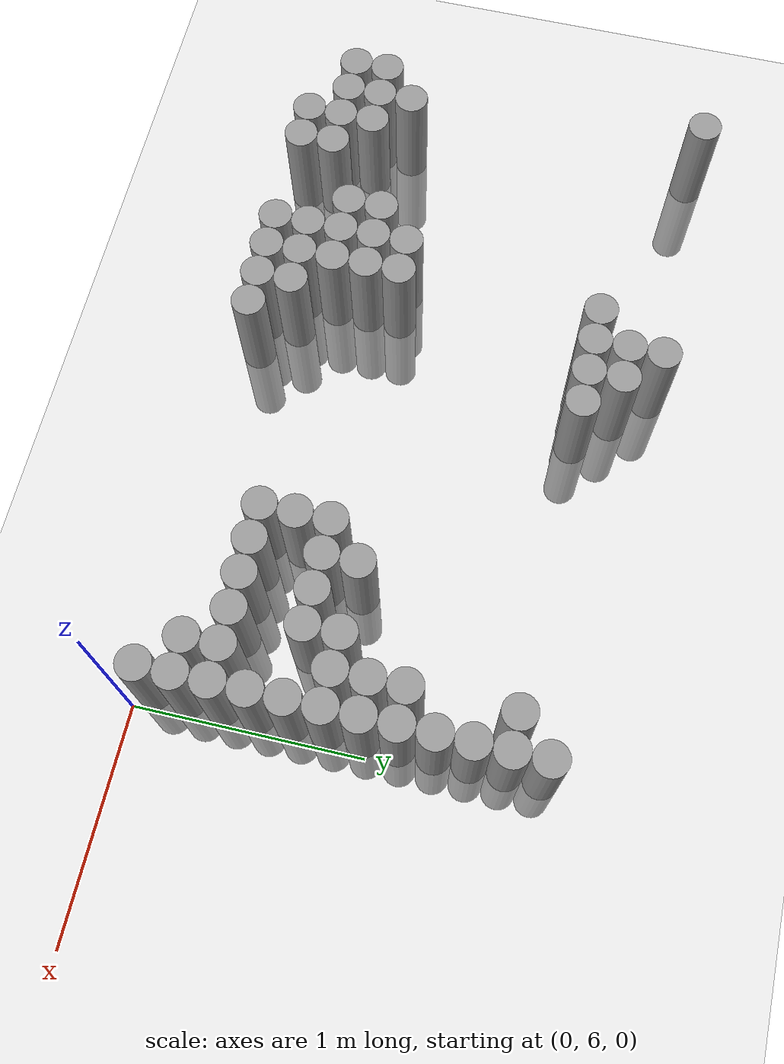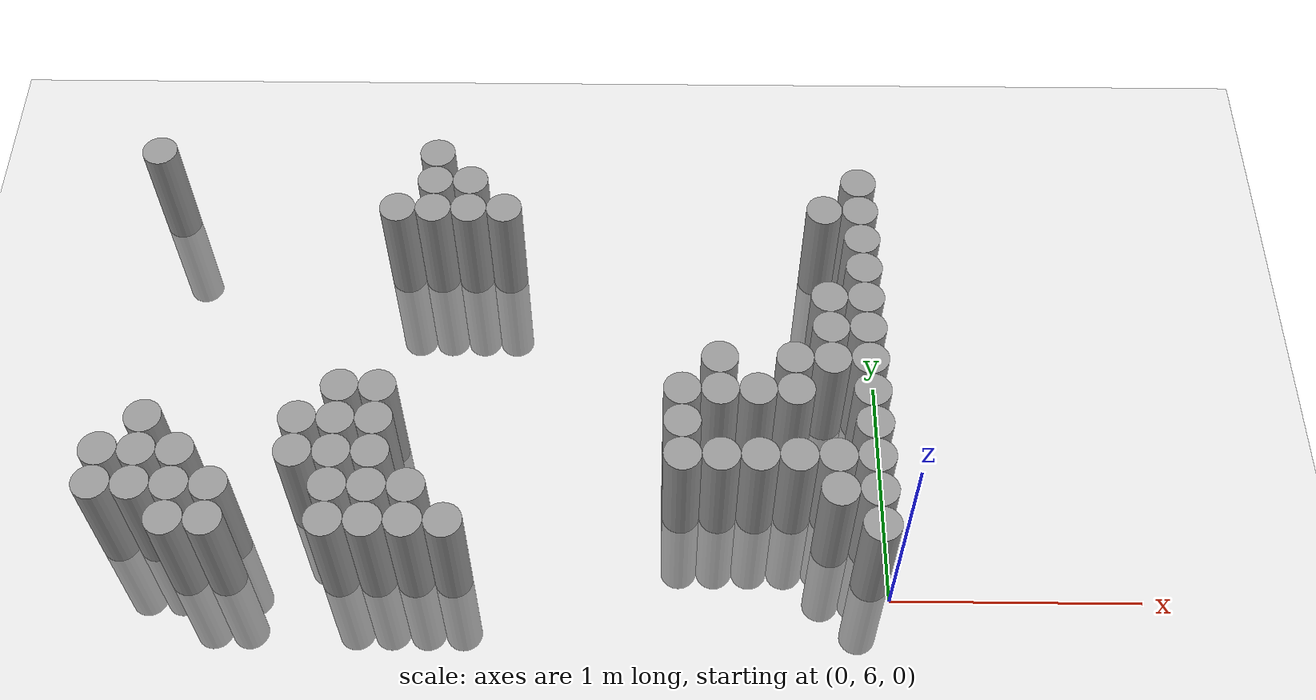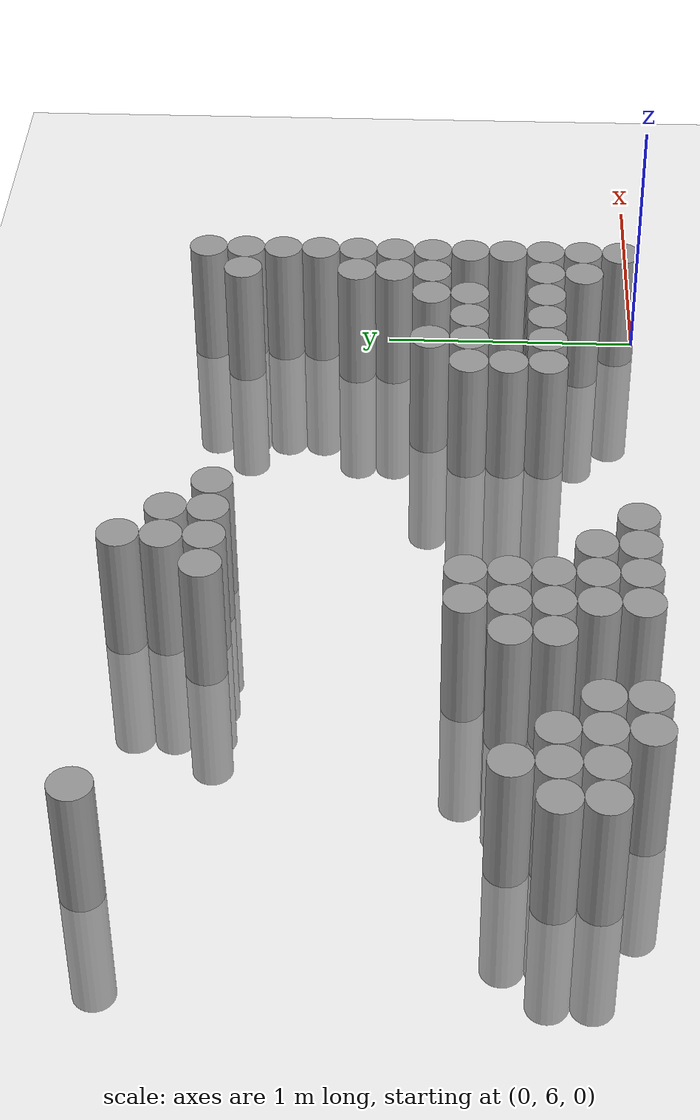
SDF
<sdf version="1.6">
 <world name="default">
  <model name="ground_plane">
   <static>1</static>
   <static>1</static>
   <link name="link">
    <collision name="collision">
     <geometry><plane><normal>0 0 1</normal><size>100 100</size></plane></geometry>
     <surface><friction><ode><mu>100</mu><mu2>50</mu2></ode></friction></surface>
    </collision>
    <visual name="visual">
     <cast_shadows>0</cast_shadows>
     <geometry><plane><normal>0 0 1</normal><size>100 100</size></plane></geometry>
     <material>
      <script><uri>file://media/materials/scripts/gazebo.material</uri><name>Gazebo/Grey</name></script>
     </material>
    </visual>
   </link>
  </model>
  <model name="unit_cylinder_171">
   <static>1</static>
   <pose>-3.075000 6.225000 0.000000 0.000000 0.000000 0.000000</pose>
   <link name="link">
    <inertial>
     <mass>1</mass>
     <inertia><ixx>0.145833</ixx><ixy>0</ixy><ixz>0</ixz><iyy>0.145833</iyy><iyz>0</iyz><izz>0.125</izz></inertia>
    </inertial>
    <collision name="collision">
     <geometry><cylinder><radius>0.075000</radius><length>1</length></cylinder></geometry>
    </collision>
    <visual name="visual">
     <geometry><cylinder><radius>0.075000</radius><length>1</length></cylinder></geometry>
     <material>
      <script><name>Gazebo/Grey</name><uri>file://media/materials/scripts/gazebo.material</uri></script>
     </material>
    </visual>
   </link>
  </model>
  <model name="unit_cylinder_172">
   <static>1</static>
   <pose>-3.075000 6.375000 0.000000 0.000000 0.000000 0.000000</pose>
   <link name="link">
    <inertial>
     <mass>1</mass>
     <inertia><ixx>0.145833</ixx><ixy>0</ixy><ixz>0</ixz><iyy>0.145833</iyy><iyz>0</iyz><izz>0.125</izz></inertia>
    </inertial>
    <collision name="collision">
     <geometry><cylinder><radius>0.075000</radius><length>1</length></cylinder></geometry>
    </collision>
    <visual name="visual">
     <geometry><cylinder><radius>0.075000</radius><length>1</length></cylinder></geometry>
     <material>
      <script><name>Gazebo/Grey</name><uri>file://media/materials/scripts/gazebo.material</uri></script>
     </material>
    </visual>
   </link>
  </model>
  <model name="unit_cylinder_173">
   <static>1</static>
   <pose>-3.075000 7.875000 0.000000 0.000000 0.000000 0.000000</pose>
   <link name="link">
    <inertial>
     <mass>1</mass>
     <inertia><ixx>0.145833</ixx><ixy>0</ixy><ixz>0</ixz><iyy>0.145833</iyy><iyz>0</iyz><izz>0.125</izz></inertia>
    </inertial>
    <collision name="collision">
     <geometry><cylinder><radius>0.075000</radius><length>1</length></cylinder></geometry>
    </collision>
    <visual name="visual">
     <geometry><cylinder><radius>0.075000</radius><length>1</length></cylinder></geometry>
     <material>
      <script><name>Gazebo/Grey</name><uri>file://media/materials/scripts/gazebo.material</uri></script>
     </material>
    </visual>
   </link>
  </model>
  <model name="unit_cylinder_174">
   <static>1</static>
   <pose>-2.925000 6.225000 0.000000 0.000000 0.000000 0.000000</pose>
   <link name="link">
    <inertial>
     <mass>1</mass>
     <inertia><ixx>0.145833</ixx><ixy>0</ixy><ixz>0</ixz><iyy>0.145833</iyy><iyz>0</iyz><izz>0.125</izz></inertia>
    </inertial>
    <collision name="collision">
     <geometry><cylinder><radius>0.075000</radius><length>1</length></cylinder></geometry>
    </collision>
    <visual name="visual">
     <geometry><cylinder><radius>0.075000</radius><length>1</length></cylinder></geometry>
     <material>
      <script><name>Gazebo/Grey</name><uri>file://media/materials/scripts/gazebo.material</uri></script>
     </material>
    </visual>
   </link>
  </model>
  <model name="unit_cylinder_175">
   <static>1</static>
   <pose>-2.925000 6.375000 0.000000 0.000000 0.000000 0.000000</pose>
   <link name="link">
    <inertial>
     <mass>1</mass>
     <inertia><ixx>0.145833</ixx><ixy>0</ixy><ixz>0</ixz><iyy>0.145833</iyy><iyz>0</iyz><izz>0.125</izz></inertia>
    </inertial>
    <collision name="collision">
     <geometry><cylinder><radius>0.075000</radius><length>1</length></cylinder></geometry>
    </collision>
    <visual name="visual">
     <geometry><cylinder><radius>0.075000</radius><length>1</length></cylinder></geometry>
     <material>
      <script><name>Gazebo/Grey</name><uri>file://media/materials/scripts/gazebo.material</uri></script>
     </material>
    </visual>
   </link>
  </model>
  <model name="unit_cylinder_176">
   <static>1</static>
   <pose>-2.925000 6.525000 0.000000 0.000000 0.000000 0.000000</pose>
   <link name="link">
    <inertial>
     <mass>1</mass>
     <inertia><ixx>0.145833</ixx><ixy>0</ixy><ixz>0</ixz><iyy>0.145833</iyy><iyz>0</iyz><izz>0.125</izz></inertia>
    </inertial>
    <collision name="collision">
     <geometry><cylinder><radius>0.075000</radius><length>1</length></cylinder></geometry>
    </collision>
    <visual name="visual">
     <geometry><cylinder><radius>0.075000</radius><length>1</length></cylinder></geometry>
     <material>
      <script><name>Gazebo/Grey</name><uri>file://media/materials/scripts/gazebo.material</uri></script>
     </material>
    </visual>
   </link>
  </model>
  <model name="unit_cylinder_177">
   <static>1</static>
   <pose>-2.775000 6.075000 0.000000 0.000000 0.000000 0.000000</pose>
   <link name="link">
    <inertial>
     <mass>1</mass>
     <inertia><ixx>0.145833</ixx><ixy>0</ixy><ixz>0</ixz><iyy>0.145833</iyy><iyz>0</iyz><izz>0.125</izz></inertia>
    </inertial>
    <collision name="collision">
     <geometry><cylinder><radius>0.075000</radius><length>1</length></cylinder></geometry>
    </collision>
    <visual name="visual">
     <geometry><cylinder><radius>0.075000</radius><length>1</length></cylinder></geometry>
     <material>
      <script><name>Gazebo/Grey</name><uri>file://media/materials/scripts/gazebo.material</uri></script>
     </material>
    </visual>
   </link>
  </model>
  <model name="unit_cylinder_178">
   <static>1</static>
   <pose>-2.775000 6.225000 0.000000 0.000000 0.000000 0.000000</pose>
   <link name="link">
    <inertial>
     <mass>1</mass>
     <inertia><ixx>0.145833</ixx><ixy>0</ixy><ixz>0</ixz><iyy>0.145833</iyy><iyz>0</iyz><izz>0.125</izz></inertia>
    </inertial>
    <collision name="collision">
     <geometry><cylinder><radius>0.075000</radius><length>1</length></cylinder></geometry>
    </collision>
    <visual name="visual">
     <geometry><cylinder><radius>0.075000</radius><length>1</length></cylinder></geometry>
     <material>
      <script><name>Gazebo/Grey</name><uri>file://media/materials/scripts/gazebo.material</uri></script>
     </material>
    </visual>
   </link>
  </model>
  <model name="unit_cylinder_179">
   <static>1</static>
   <pose>-2.775000 6.375000 0.000000 0.000000 0.000000 0.000000</pose>
   <link name="link">
    <inertial>
     <mass>1</mass>
     <inertia><ixx>0.145833</ixx><ixy>0</ixy><ixz>0</ixz><iyy>0.145833</iyy><iyz>0</iyz><izz>0.125</izz></inertia>
    </inertial>
    <collision name="collision">
     <geometry><cylinder><radius>0.075000</radius><length>1</length></cylinder></geometry>
    </collision>
    <visual name="visual">
     <geometry><cylinder><radius>0.075000</radius><length>1</length></cylinder></geometry>
     <material>
      <script><name>Gazebo/Grey</name><uri>file://media/materials/scripts/gazebo.material</uri></script>
     </material>
    </visual>
   </link>
  </model>
  <model name="unit_cylinder_181">
   <static>1</static>
   <pose>-2.625000 6.075000 0.000000 0.000000 0.000000 0.000000</pose>
   <link name="link">
    <inertial>
     <mass>1</mass>
     <inertia><ixx>0.145833</ixx><ixy>0</ixy><ixz>0</ixz><iyy>0.145833</iyy><iyz>0</iyz><izz>0.125</izz></inertia>
    </inertial>
    <collision name="collision">
     <geometry><cylinder><radius>0.075000</radius><length>1</length></cylinder></geometry>
    </collision>
    <visual name="visual">
     <geometry><cylinder><radius>0.075000</radius><length>1</length></cylinder></geometry>
     <material>
      <script><name>Gazebo/Grey</name><uri>file://media/materials/scripts/gazebo.material</uri></script>
     </material>
    </visual>
   </link>
  </model>
  <model name="unit_cylinder_182">
   <static>1</static>
   <pose>-2.625000 6.225000 0.000000 0.000000 0.000000 0.000000</pose>
   <link name="link">
    <inertial>
     <mass>1</mass>
     <inertia><ixx>0.145833</ixx><ixy>0</ixy><ixz>0</ixz><iyy>0.145833</iyy><iyz>0</iyz><izz>0.125</izz></inertia>
    </inertial>
    <collision name="collision">
     <geometry><cylinder><radius>0.075000</radius><length>1</length></cylinder></geometry>
    </collision>
    <visual name="visual">
     <geometry><cylinder><radius>0.075000</radius><length>1</length></cylinder></geometry>
     <material>
      <script><name>Gazebo/Grey</name><uri>file://media/materials/scripts/gazebo.material</uri></script>
     </material>
    </visual>
   </link>
  </model>
  <model name="unit_cylinder_190">
   <static>1</static>
   <pose>-2.325000 6.375000 0.000000 0.000000 0.000000 0.000000</pose>
   <link name="link">
    <inertial>
     <mass>1</mass>
     <inertia><ixx>0.145833</ixx><ixy>0</ixy><ixz>0</ixz><iyy>0.145833</iyy><iyz>0</iyz><izz>0.125</izz></inertia>
    </inertial>
    <collision name="collision">
     <geometry><cylinder><radius>0.075000</radius><length>1</length></cylinder></geometry>
    </collision>
    <visual name="visual">
     <geometry><cylinder><radius>0.075000</radius><length>1</length></cylinder></geometry>
     <material>
      <script><name>Gazebo/Grey</name><uri>file://media/materials/scripts/gazebo.material</uri></script>
     </material>
    </visual>
   </link>
  </model>
  <model name="unit_cylinder_191">
   <static>1</static>
   <pose>-2.325000 6.525000 0.000000 0.000000 0.000000 0.000000</pose>
   <link name="link">
    <inertial>
     <mass>1</mass>
     <inertia><ixx>0.145833</ixx><ixy>0</ixy><ixz>0</ixz><iyy>0.145833</iyy><iyz>0</iyz><izz>0.125</izz></inertia>
    </inertial>
    <collision name="collision">
     <geometry><cylinder><radius>0.075000</radius><length>1</length></cylinder></geometry>
    </collision>
    <visual name="visual">
     <geometry><cylinder><radius>0.075000</radius><length>1</length></cylinder></geometry>
     <material>
      <script><name>Gazebo/Grey</name><uri>file://media/materials/scripts/gazebo.material</uri></script>
     </material>
    </visual>
   </link>
  </model>
  <model name="unit_cylinder_196">
   <static>1</static>
   <pose>-2.175000 6.075000 0.000000 0.000000 0.000000 0.000000</pose>
   <link name="link">
    <inertial>
     <mass>1</mass>
     <inertia><ixx>0.145833</ixx><ixy>0</ixy><ixz>0</ixz><iyy>0.145833</iyy><iyz>0</iyz><izz>0.125</izz></inertia>
    </inertial>
    <collision name="collision">
     <geometry><cylinder><radius>0.075000</radius><length>1</length></cylinder></geometry>
    </collision>
    <visual name="visual">
     <geometry><cylinder><radius>0.075000</radius><length>1</length></cylinder></geometry>
     <material>
      <script><name>Gazebo/Grey</name><uri>file://media/materials/scripts/gazebo.material</uri></script>
     </material>
    </visual>
   </link>
  </model>
  <model name="unit_cylinder_197">
   <static>1</static>
   <pose>-2.175000 6.225000 0.000000 0.000000 0.000000 0.000000</pose>
   <link name="link">
    <inertial>
     <mass>1</mass>
     <inertia><ixx>0.145833</ixx><ixy>0</ixy><ixz>0</ixz><iyy>0.145833</iyy><iyz>0</iyz><izz>0.125</izz></inertia>
    </inertial>
    <collision name="collision">
     <geometry><cylinder><radius>0.075000</radius><length>1</length></cylinder></geometry>
    </collision>
    <visual name="visual">
     <geometry><cylinder><radius>0.075000</radius><length>1</length></cylinder></geometry>
     <material>
      <script><name>Gazebo/Grey</name><uri>file://media/materials/scripts/gazebo.material</uri></script>
     </material>
    </visual>
   </link>
  </model>
  <model name="unit_cylinder_198">
   <static>1</static>
   <pose>-2.175000 6.375000 0.000000 0.000000 0.000000 0.000000</pose>
   <link name="link">
    <inertial>
     <mass>1</mass>
     <inertia><ixx>0.145833</ixx><ixy>0</ixy><ixz>0</ixz><iyy>0.145833</iyy><iyz>0</iyz><izz>0.125</izz></inertia>
    </inertial>
    <collision name="collision">
     <geometry><cylinder><radius>0.075000</radius><length>1</length></cylinder></geometry>
    </collision>
    <visual name="visual">
     <geometry><cylinder><radius>0.075000</radius><length>1</length></cylinder></geometry>
     <material>
      <script><name>Gazebo/Grey</name><uri>file://media/materials/scripts/gazebo.material</uri></script>
     </material>
    </visual>
   </link>
  </model>
  <model name="unit_cylinder_199">
   <static>1</static>
   <pose>-2.175000 6.525000 0.000000 0.000000 0.000000 0.000000</pose>
   <link name="link">
    <inertial>
     <mass>1</mass>
     <inertia><ixx>0.145833</ixx><ixy>0</ixy><ixz>0</ixz><iyy>0.145833</iyy><iyz>0</iyz><izz>0.125</izz></inertia>
    </inertial>
    <collision name="collision">
     <geometry><cylinder><radius>0.075000</radius><length>1</length></cylinder></geometry>
    </collision>
    <visual name="visual">
     <geometry><cylinder><radius>0.075000</radius><length>1</length></cylinder></geometry>
     <material>
      <script><name>Gazebo/Grey</name><uri>file://media/materials/scripts/gazebo.material</uri></script>
     </material>
    </visual>
   </link>
  </model>
  <model name="unit_cylinder_200">
   <static>1</static>
   <pose>-2.175000 6.675000 0.000000 0.000000 0.000000 0.000000</pose>
   <link name="link">
    <inertial>
     <mass>1</mass>
     <inertia><ixx>0.145833</ixx><ixy>0</ixy><ixz>0</ixz><iyy>0.145833</iyy><iyz>0</iyz><izz>0.125</izz></inertia>
    </inertial>
    <collision name="collision">
     <geometry><cylinder><radius>0.075000</radius><length>1</length></cylinder></geometry>
    </collision>
    <visual name="visual">
     <geometry><cylinder><radius>0.075000</radius><length>1</length></cylinder></geometry>
     <material>
      <script><name>Gazebo/Grey</name><uri>file://media/materials/scripts/gazebo.material</uri></script>
     </material>
    </visual>
   </link>
  </model>
  <model name="unit_cylinder_204">
   <static>1</static>
   <pose>-2.025000 6.075000 0.000000 0.000000 0.000000 0.000000</pose>
   <link name="link">
    <inertial>
     <mass>1</mass>
     <inertia><ixx>0.145833</ixx><ixy>0</ixy><ixz>0</ixz><iyy>0.145833</iyy><iyz>0</iyz><izz>0.125</izz></inertia>
    </inertial>
    <collision name="collision">
     <geometry><cylinder><radius>0.075000</radius><length>1</length></cylinder></geometry>
    </collision>
    <visual name="visual">
     <geometry><cylinder><radius>0.075000</radius><length>1</length></cylinder></geometry>
     <material>
      <script><name>Gazebo/Grey</name><uri>file://media/materials/scripts/gazebo.material</uri></script>
     </material>
    </visual>
   </link>
  </model>
  <model name="unit_cylinder_205">
   <static>1</static>
   <pose>-2.025000 6.225000 0.000000 0.000000 0.000000 0.000000</pose>
   <link name="link">
    <inertial>
     <mass>1</mass>
     <inertia><ixx>0.145833</ixx><ixy>0</ixy><ixz>0</ixz><iyy>0.145833</iyy><iyz>0</iyz><izz>0.125</izz></inertia>
    </inertial>
    <collision name="collision">
     <geometry><cylinder><radius>0.075000</radius><length>1</length></cylinder></geometry>
    </collision>
    <visual name="visual">
     <geometry><cylinder><radius>0.075000</radius><length>1</length></cylinder></geometry>
     <material>
      <script><name>Gazebo/Grey</name><uri>file://media/materials/scripts/gazebo.material</uri></script>
     </material>
    </visual>
   </link>
  </model>
  <model name="unit_cylinder_206">
   <static>1</static>
   <pose>-2.025000 6.375000 0.000000 0.000000 0.000000 0.000000</pose>
   <link name="link">
    <inertial>
     <mass>1</mass>
     <inertia><ixx>0.145833</ixx><ixy>0</ixy><ixz>0</ixz><iyy>0.145833</iyy><iyz>0</iyz><izz>0.125</izz></inertia>
    </inertial>
    <collision name="collision">
     <geometry><cylinder><radius>0.075000</radius><length>1</length></cylinder></geometry>
    </collision>
    <visual name="visual">
     <geometry><cylinder><radius>0.075000</radius><length>1</length></cylinder></geometry>
     <material>
      <script><name>Gazebo/Grey</name><uri>file://media/materials/scripts/gazebo.material</uri></script>
     </material>
    </visual>
   </link>
  </model>
  <model name="unit_cylinder_207">
   <static>1</static>
   <pose>-2.025000 6.525000 0.000000 0.000000 0.000000 0.000000</pose>
   <link name="link">
    <inertial>
     <mass>1</mass>
     <inertia><ixx>0.145833</ixx><ixy>0</ixy><ixz>0</ixz><iyy>0.145833</iyy><iyz>0</iyz><izz>0.125</izz></inertia>
    </inertial>
    <collision name="collision">
     <geometry><cylinder><radius>0.075000</radius><length>1</length></cylinder></geometry>
    </collision>
    <visual name="visual">
     <geometry><cylinder><radius>0.075000</radius><length>1</length></cylinder></geometry>
     <material>
      <script><name>Gazebo/Grey</name><uri>file://media/materials/scripts/gazebo.material</uri></script>
     </material>
    </visual>
   </link>
  </model>
  <model name="unit_cylinder_208">
   <static>1</static>
   <pose>-2.025000 6.675000 0.000000 0.000000 0.000000 0.000000</pose>
   <link name="link">
    <inertial>
     <mass>1</mass>
     <inertia><ixx>0.145833</ixx><ixy>0</ixy><ixz>0</ixz><iyy>0.145833</iyy><iyz>0</iyz><izz>0.125</izz></inertia>
    </inertial>
    <collision name="collision">
     <geometry><cylinder><radius>0.075000</radius><length>1</length></cylinder></geometry>
    </collision>
    <visual name="visual">
     <geometry><cylinder><radius>0.075000</radius><length>1</length></cylinder></geometry>
     <material>
      <script><name>Gazebo/Grey</name><uri>file://media/materials/scripts/gazebo.material</uri></script>
     </material>
    </visual>
   </link>
  </model>
  <model name="unit_cylinder_209">
   <static>1</static>
   <pose>-2.025000 7.575000 0.000000 0.000000 0.000000 0.000000</pose>
   <link name="link">
    <inertial>
     <mass>1</mass>
     <inertia><ixx>0.145833</ixx><ixy>0</ixy><ixz>0</ixz><iyy>0.145833</iyy><iyz>0</iyz><izz>0.125</izz></inertia>
    </inertial>
    <collision name="collision">
     <geometry><cylinder><radius>0.075000</radius><length>1</length></cylinder></geometry>
    </collision>
    <visual name="visual">
     <geometry><cylinder><radius>0.075000</radius><length>1</length></cylinder></geometry>
     <material>
      <script><name>Gazebo/Grey</name><uri>file://media/materials/scripts/gazebo.material</uri></script>
     </material>
    </visual>
   </link>
  </model>
  <model name="unit_cylinder_217">
   <static>1</static>
   <pose>-1.875000 6.075000 0.000000 0.000000 0.000000 0.000000</pose>
   <link name="link">
    <inertial>
     <mass>1</mass>
     <inertia><ixx>0.145833</ixx><ixy>0</ixy><ixz>0</ixz><iyy>0.145833</iyy><iyz>0</iyz><izz>0.125</izz></inertia>
    </inertial>
    <collision name="collision">
     <geometry><cylinder><radius>0.075000</radius><length>1</length></cylinder></geometry>
    </collision>
    <visual name="visual">
     <geometry><cylinder><radius>0.075000</radius><length>1</length></cylinder></geometry>
     <material>
      <script><name>Gazebo/Grey</name><uri>file://media/materials/scripts/gazebo.material</uri></script>
     </material>
    </visual>
   </link>
  </model>
  <model name="unit_cylinder_218">
   <static>1</static>
   <pose>-1.875000 6.225000 0.000000 0.000000 0.000000 0.000000</pose>
   <link name="link">
    <inertial>
     <mass>1</mass>
     <inertia><ixx>0.145833</ixx><ixy>0</ixy><ixz>0</ixz><iyy>0.145833</iyy><iyz>0</iyz><izz>0.125</izz></inertia>
    </inertial>
    <collision name="collision">
     <geometry><cylinder><radius>0.075000</radius><length>1</length></cylinder></geometry>
    </collision>
    <visual name="visual">
     <geometry><cylinder><radius>0.075000</radius><length>1</length></cylinder></geometry>
     <material>
      <script><name>Gazebo/Grey</name><uri>file://media/materials/scripts/gazebo.material</uri></script>
     </material>
    </visual>
   </link>
  </model>
  <model name="unit_cylinder_219">
   <static>1</static>
   <pose>-1.875000 7.575000 0.000000 0.000000 0.000000 0.000000</pose>
   <link name="link">
    <inertial>
     <mass>1</mass>
     <inertia><ixx>0.145833</ixx><ixy>0</ixy><ixz>0</ixz><iyy>0.145833</iyy><iyz>0</iyz><izz>0.125</izz></inertia>
    </inertial>
    <collision name="collision">
     <geometry><cylinder><radius>0.075000</radius><length>1</length></cylinder></geometry>
    </collision>
    <visual name="visual">
     <geometry><cylinder><radius>0.075000</radius><length>1</length></cylinder></geometry>
     <material>
      <script><name>Gazebo/Grey</name><uri>file://media/materials/scripts/gazebo.material</uri></script>
     </material>
    </visual>
   </link>
  </model>
  <model name="unit_cylinder_220">
   <static>1</static>
   <pose>-1.875000 7.725000 0.000000 0.000000 0.000000 0.000000</pose>
   <link name="link">
    <inertial>
     <mass>1</mass>
     <inertia><ixx>0.145833</ixx><ixy>0</ixy><ixz>0</ixz><iyy>0.145833</iyy><iyz>0</iyz><izz>0.125</izz></inertia>
    </inertial>
    <collision name="collision">
     <geometry><cylinder><radius>0.075000</radius><length>1</length></cylinder></geometry>
    </collision>
    <visual name="visual">
     <geometry><cylinder><radius>0.075000</radius><length>1</length></cylinder></geometry>
     <material>
      <script><name>Gazebo/Grey</name><uri>file://media/materials/scripts/gazebo.material</uri></script>
     </material>
    </visual>
   </link>
  </model>
  <model name="unit_cylinder_221">
   <static>1</static>
   <pose>-1.875000 7.875000 0.000000 0.000000 0.000000 0.000000</pose>
   <link name="link">
    <inertial>
     <mass>1</mass>
     <inertia><ixx>0.145833</ixx><ixy>0</ixy><ixz>0</ixz><iyy>0.145833</iyy><iyz>0</iyz><izz>0.125</izz></inertia>
    </inertial>
    <collision name="collision">
     <geometry><cylinder><radius>0.075000</radius><length>1</length></cylinder></geometry>
    </collision>
    <visual name="visual">
     <geometry><cylinder><radius>0.075000</radius><length>1</length></cylinder></geometry>
     <material>
      <script><name>Gazebo/Grey</name><uri>file://media/materials/scripts/gazebo.material</uri></script>
     </material>
    </visual>
   </link>
  </model>
  <model name="unit_cylinder_229">
   <static>1</static>
   <pose>-1.725000 6.075000 0.000000 0.000000 0.000000 0.000000</pose>
   <link name="link">
    <inertial>
     <mass>1</mass>
     <inertia><ixx>0.145833</ixx><ixy>0</ixy><ixz>0</ixz><iyy>0.145833</iyy><iyz>0</iyz><izz>0.125</izz></inertia>
    </inertial>
    <collision name="collision">
     <geometry><cylinder><radius>0.075000</radius><length>1</length></cylinder></geometry>
    </collision>
    <visual name="visual">
     <geometry><cylinder><radius>0.075000</radius><length>1</length></cylinder></geometry>
     <material>
      <script><name>Gazebo/Grey</name><uri>file://media/materials/scripts/gazebo.material</uri></script>
     </material>
    </visual>
   </link>
  </model>
  <model name="unit_cylinder_230">
   <static>1</static>
   <pose>-1.725000 7.575000 0.000000 0.000000 0.000000 0.000000</pose>
   <link name="link">
    <inertial>
     <mass>1</mass>
     <inertia><ixx>0.145833</ixx><ixy>0</ixy><ixz>0</ixz><iyy>0.145833</iyy><iyz>0</iyz><izz>0.125</izz></inertia>
    </inertial>
    <collision name="collision">
     <geometry><cylinder><radius>0.075000</radius><length>1</length></cylinder></geometry>
    </collision>
    <visual name="visual">
     <geometry><cylinder><radius>0.075000</radius><length>1</length></cylinder></geometry>
     <material>
      <script><name>Gazebo/Grey</name><uri>file://media/materials/scripts/gazebo.material</uri></script>
     </material>
    </visual>
   </link>
  </model>
  <model name="unit_cylinder_231">
   <static>1</static>
   <pose>-1.725000 7.725000 0.000000 0.000000 0.000000 0.000000</pose>
   <link name="link">
    <inertial>
     <mass>1</mass>
     <inertia><ixx>0.145833</ixx><ixy>0</ixy><ixz>0</ixz><iyy>0.145833</iyy><iyz>0</iyz><izz>0.125</izz></inertia>
    </inertial>
    <collision name="collision">
     <geometry><cylinder><radius>0.075000</radius><length>1</length></cylinder></geometry>
    </collision>
    <visual name="visual">
     <geometry><cylinder><radius>0.075000</radius><length>1</length></cylinder></geometry>
     <material>
      <script><name>Gazebo/Grey</name><uri>file://media/materials/scripts/gazebo.material</uri></script>
     </material>
    </visual>
   </link>
  </model>
  <model name="unit_cylinder_237">
   <static>1</static>
   <pose>-1.575000 7.575000 0.000000 0.000000 0.000000 0.000000</pose>
   <link name="link">
    <inertial>
     <mass>1</mass>
     <inertia><ixx>0.145833</ixx><ixy>0</ixy><ixz>0</ixz><iyy>0.145833</iyy><iyz>0</iyz><izz>0.125</izz></inertia>
    </inertial>
    <collision name="collision">
     <geometry><cylinder><radius>0.075000</radius><length>1</length></cylinder></geometry>
    </collision>
    <visual name="visual">
     <geometry><cylinder><radius>0.075000</radius><length>1</length></cylinder></geometry>
     <material>
      <script><name>Gazebo/Grey</name><uri>file://media/materials/scripts/gazebo.material</uri></script>
     </material>
    </visual>
   </link>
  </model>
  <model name="unit_cylinder_245">
   <static>1</static>
   <pose>-0.825000 6.375000 0.000000 0.000000 0.000000 0.000000</pose>
   <link name="link">
    <inertial>
     <mass>1</mass>
     <inertia><ixx>0.145833</ixx><ixy>0</ixy><ixz>0</ixz><iyy>0.145833</iyy><iyz>0</iyz><izz>0.125</izz></inertia>
    </inertial>
    <collision name="collision">
     <geometry><cylinder><radius>0.075000</radius><length>1</length></cylinder></geometry>
    </collision>
    <visual name="visual">
     <geometry><cylinder><radius>0.075000</radius><length>1</length></cylinder></geometry>
     <material>
      <script><name>Gazebo/Grey</name><uri>file://media/materials/scripts/gazebo.material</uri></script>
     </material>
    </visual>
   </link>
  </model>
  <model name="unit_cylinder_246">
   <static>1</static>
   <pose>-0.825000 6.525000 0.000000 0.000000 0.000000 0.000000</pose>
   <link name="link">
    <inertial>
     <mass>1</mass>
     <inertia><ixx>0.145833</ixx><ixy>0</ixy><ixz>0</ixz><iyy>0.145833</iyy><iyz>0</iyz><izz>0.125</izz></inertia>
    </inertial>
    <collision name="collision">
     <geometry><cylinder><radius>0.075000</radius><length>1</length></cylinder></geometry>
    </collision>
    <visual name="visual">
     <geometry><cylinder><radius>0.075000</radius><length>1</length></cylinder></geometry>
     <material>
      <script><name>Gazebo/Grey</name><uri>file://media/materials/scripts/gazebo.material</uri></script>
     </material>
    </visual>
   </link>
  </model>
  <model name="unit_cylinder_247">
   <static>1</static>
   <pose>-0.825000 6.675000 0.000000 0.000000 0.000000 0.000000</pose>
   <link name="link">
    <inertial>
     <mass>1</mass>
     <inertia><ixx>0.145833</ixx><ixy>0</ixy><ixz>0</ixz><iyy>0.145833</iyy><iyz>0</iyz><izz>0.125</izz></inertia>
    </inertial>
    <collision name="collision">
     <geometry><cylinder><radius>0.075000</radius><length>1</length></cylinder></geometry>
    </collision>
    <visual name="visual">
     <geometry><cylinder><radius>0.075000</radius><length>1</length></cylinder></geometry>
     <material>
      <script><name>Gazebo/Grey</name><uri>file://media/materials/scripts/gazebo.material</uri></script>
     </material>
    </visual>
   </link>
  </model>
  <model name="unit_cylinder_252">
   <static>1</static>
   <pose>-0.675000 6.375000 0.000000 0.000000 0.000000 0.000000</pose>
   <link name="link">
    <inertial>
     <mass>1</mass>
     <inertia><ixx>0.145833</ixx><ixy>0</ixy><ixz>0</ixz><iyy>0.145833</iyy><iyz>0</iyz><izz>0.125</izz></inertia>
    </inertial>
    <collision name="collision">
     <geometry><cylinder><radius>0.075000</radius><length>1</length></cylinder></geometry>
    </collision>
    <visual name="visual">
     <geometry><cylinder><radius>0.075000</radius><length>1</length></cylinder></geometry>
     <material>
      <script><name>Gazebo/Grey</name><uri>file://media/materials/scripts/gazebo.material</uri></script>
     </material>
    </visual>
   </link>
  </model>
  <model name="unit_cylinder_253">
   <static>1</static>
   <pose>-0.675000 6.675000 0.000000 0.000000 0.000000 0.000000</pose>
   <link name="link">
    <inertial>
     <mass>1</mass>
     <inertia><ixx>0.145833</ixx><ixy>0</ixy><ixz>0</ixz><iyy>0.145833</iyy><iyz>0</iyz><izz>0.125</izz></inertia>
    </inertial>
    <collision name="collision">
     <geometry><cylinder><radius>0.075000</radius><length>1</length></cylinder></geometry>
    </collision>
    <visual name="visual">
     <geometry><cylinder><radius>0.075000</radius><length>1</length></cylinder></geometry>
     <material>
      <script><name>Gazebo/Grey</name><uri>file://media/materials/scripts/gazebo.material</uri></script>
     </material>
    </visual>
   </link>
  </model>
  <model name="unit_cylinder_254">
   <static>1</static>
   <pose>-0.675000 6.825000 0.000000 0.000000 0.000000 0.000000</pose>
   <link name="link">
    <inertial>
     <mass>1</mass>
     <inertia><ixx>0.145833</ixx><ixy>0</ixy><ixz>0</ixz><iyy>0.145833</iyy><iyz>0</iyz><izz>0.125</izz></inertia>
    </inertial>
    <collision name="collision">
     <geometry><cylinder><radius>0.075000</radius><length>1</length></cylinder></geometry>
    </collision>
    <visual name="visual">
     <geometry><cylinder><radius>0.075000</radius><length>1</length></cylinder></geometry>
     <material>
      <script><name>Gazebo/Grey</name><uri>file://media/materials/scripts/gazebo.material</uri></script>
     </material>
    </visual>
   </link>
  </model>
  <model name="unit_cylinder_258">
   <static>1</static>
   <pose>-0.525000 6.375000 0.000000 0.000000 0.000000 0.000000</pose>
   <link name="link">
    <inertial>
     <mass>1</mass>
     <inertia><ixx>0.145833</ixx><ixy>0</ixy><ixz>0</ixz><iyy>0.145833</iyy><iyz>0</iyz><izz>0.125</izz></inertia>
    </inertial>
    <collision name="collision">
     <geometry><cylinder><radius>0.075000</radius><length>1</length></cylinder></geometry>
    </collision>
    <visual name="visual">
     <geometry><cylinder><radius>0.075000</radius><length>1</length></cylinder></geometry>
     <material>
      <script><name>Gazebo/Grey</name><uri>file://media/materials/scripts/gazebo.material</uri></script>
     </material>
    </visual>
   </link>
  </model>
  <model name="unit_cylinder_259">
   <static>1</static>
   <pose>-0.525000 6.675000 0.000000 0.000000 0.000000 0.000000</pose>
   <link name="link">
    <inertial>
     <mass>1</mass>
     <inertia><ixx>0.145833</ixx><ixy>0</ixy><ixz>0</ixz><iyy>0.145833</iyy><iyz>0</iyz><izz>0.125</izz></inertia>
    </inertial>
    <collision name="collision">
     <geometry><cylinder><radius>0.075000</radius><length>1</length></cylinder></geometry>
    </collision>
    <visual name="visual">
     <geometry><cylinder><radius>0.075000</radius><length>1</length></cylinder></geometry>
     <material>
      <script><name>Gazebo/Grey</name><uri>file://media/materials/scripts/gazebo.material</uri></script>
     </material>
    </visual>
   </link>
  </model>
  <model name="unit_cylinder_263">
   <static>1</static>
   <pose>-0.375000 6.375000 0.000000 0.000000 0.000000 0.000000</pose>
   <link name="link">
    <inertial>
     <mass>1</mass>
     <inertia><ixx>0.145833</ixx><ixy>0</ixy><ixz>0</ixz><iyy>0.145833</iyy><iyz>0</iyz><izz>0.125</izz></inertia>
    </inertial>
    <collision name="collision">
     <geometry><cylinder><radius>0.075000</radius><length>1</length></cylinder></geometry>
    </collision>
    <visual name="visual">
     <geometry><cylinder><radius>0.075000</radius><length>1</length></cylinder></geometry>
     <material>
      <script><name>Gazebo/Grey</name><uri>file://media/materials/scripts/gazebo.material</uri></script>
     </material>
    </visual>
   </link>
  </model>
  <model name="unit_cylinder_264">
   <static>1</static>
   <pose>-0.375000 6.675000 0.000000 0.000000 0.000000 0.000000</pose>
   <link name="link">
    <inertial>
     <mass>1</mass>
     <inertia><ixx>0.145833</ixx><ixy>0</ixy><ixz>0</ixz><iyy>0.145833</iyy><iyz>0</iyz><izz>0.125</izz></inertia>
    </inertial>
    <collision name="collision">
     <geometry><cylinder><radius>0.075000</radius><length>1</length></cylinder></geometry>
    </collision>
    <visual name="visual">
     <geometry><cylinder><radius>0.075000</radius><length>1</length></cylinder></geometry>
     <material>
      <script><name>Gazebo/Grey</name><uri>file://media/materials/scripts/gazebo.material</uri></script>
     </material>
    </visual>
   </link>
  </model>
  <model name="unit_cylinder_265">
   <static>1</static>
   <pose>-0.375000 6.825000 0.000000 0.000000 0.000000 0.000000</pose>
   <link name="link">
    <inertial>
     <mass>1</mass>
     <inertia><ixx>0.145833</ixx><ixy>0</ixy><ixz>0</ixz><iyy>0.145833</iyy><iyz>0</iyz><izz>0.125</izz></inertia>
    </inertial>
    <collision name="collision">
     <geometry><cylinder><radius>0.075000</radius><length>1</length></cylinder></geometry>
    </collision>
    <visual name="visual">
     <geometry><cylinder><radius>0.075000</radius><length>1</length></cylinder></geometry>
     <material>
      <script><name>Gazebo/Grey</name><uri>file://media/materials/scripts/gazebo.material</uri></script>
     </material>
    </visual>
   </link>
  </model>
  <model name="unit_cylinder_272">
   <static>1</static>
   <pose>-0.225000 6.225000 0.000000 0.000000 0.000000 0.000000</pose>
   <link name="link">
    <inertial>
     <mass>1</mass>
     <inertia><ixx>0.145833</ixx><ixy>0</ixy><ixz>0</ixz><iyy>0.145833</iyy><iyz>0</iyz><izz>0.125</izz></inertia>
    </inertial>
    <collision name="collision">
     <geometry><cylinder><radius>0.075000</radius><length>1</length></cylinder></geometry>
    </collision>
    <visual name="visual">
     <geometry><cylinder><radius>0.075000</radius><length>1</length></cylinder></geometry>
     <material>
      <script><name>Gazebo/Grey</name><uri>file://media/materials/scripts/gazebo.material</uri></script>
     </material>
    </visual>
   </link>
  </model>
  <model name="unit_cylinder_273">
   <static>1</static>
   <pose>-0.225000 6.375000 0.000000 0.000000 0.000000 0.000000</pose>
   <link name="link">
    <inertial>
     <mass>1</mass>
     <inertia><ixx>0.145833</ixx><ixy>0</ixy><ixz>0</ixz><iyy>0.145833</iyy><iyz>0</iyz><izz>0.125</izz></inertia>
    </inertial>
    <collision name="collision">
     <geometry><cylinder><radius>0.075000</radius><length>1</length></cylinder></geometry>
    </collision>
    <visual name="visual">
     <geometry><cylinder><radius>0.075000</radius><length>1</length></cylinder></geometry>
     <material>
      <script><name>Gazebo/Grey</name><uri>file://media/materials/scripts/gazebo.material</uri></script>
     </material>
    </visual>
   </link>
  </model>
  <model name="unit_cylinder_274">
   <static>1</static>
   <pose>-0.225000 6.825000 0.000000 0.000000 0.000000 0.000000</pose>
   <link name="link">
    <inertial>
     <mass>1</mass>
     <inertia><ixx>0.145833</ixx><ixy>0</ixy><ixz>0</ixz><iyy>0.145833</iyy><iyz>0</iyz><izz>0.125</izz></inertia>
    </inertial>
    <collision name="collision">
     <geometry><cylinder><radius>0.075000</radius><length>1</length></cylinder></geometry>
    </collision>
    <visual name="visual">
     <geometry><cylinder><radius>0.075000</radius><length>1</length></cylinder></geometry>
     <material>
      <script><name>Gazebo/Grey</name><uri>file://media/materials/scripts/gazebo.material</uri></script>
     </material>
    </visual>
   </link>
  </model>
  <model name="unit_cylinder_275">
   <static>1</static>
   <pose>-0.225000 6.975000 0.000000 0.000000 0.000000 0.000000</pose>
   <link name="link">
    <inertial>
     <mass>1</mass>
     <inertia><ixx>0.145833</ixx><ixy>0</ixy><ixz>0</ixz><iyy>0.145833</iyy><iyz>0</iyz><izz>0.125</izz></inertia>
    </inertial>
    <collision name="collision">
     <geometry><cylinder><radius>0.075000</radius><length>1</length></cylinder></geometry>
    </collision>
    <visual name="visual">
     <geometry><cylinder><radius>0.075000</radius><length>1</length></cylinder></geometry>
     <material>
      <script><name>Gazebo/Grey</name><uri>file://media/materials/scripts/gazebo.material</uri></script>
     </material>
    </visual>
   </link>
  </model>
  <model name="unit_cylinder_276">
   <static>1</static>
   <pose>-0.225000 7.125000 0.000000 0.000000 0.000000 0.000000</pose>
   <link name="link">
    <inertial>
     <mass>1</mass>
     <inertia><ixx>0.145833</ixx><ixy>0</ixy><ixz>0</ixz><iyy>0.145833</iyy><iyz>0</iyz><izz>0.125</izz></inertia>
    </inertial>
    <collision name="collision">
     <geometry><cylinder><radius>0.075000</radius><length>1</length></cylinder></geometry>
    </collision>
    <visual name="visual">
     <geometry><cylinder><radius>0.075000</radius><length>1</length></cylinder></geometry>
     <material>
      <script><name>Gazebo/Grey</name><uri>file://media/materials/scripts/gazebo.material</uri></script>
     </material>
    </visual>
   </link>
  </model>
  <model name="unit_cylinder_277">
   <static>1</static>
   <pose>-0.225000 7.575000 0.000000 0.000000 0.000000 0.000000</pose>
   <link name="link">
    <inertial>
     <mass>1</mass>
     <inertia><ixx>0.145833</ixx><ixy>0</ixy><ixz>0</ixz><iyy>0.145833</iyy><iyz>0</iyz><izz>0.125</izz></inertia>
    </inertial>
    <collision name="collision">
     <geometry><cylinder><radius>0.075000</radius><length>1</length></cylinder></geometry>
    </collision>
    <visual name="visual">
     <geometry><cylinder><radius>0.075000</radius><length>1</length></cylinder></geometry>
     <material>
      <script><name>Gazebo/Grey</name><uri>file://media/materials/scripts/gazebo.material</uri></script>
     </material>
    </visual>
   </link>
  </model>
  <model name="unit_cylinder_288">
   <static>1</static>
   <pose>-0.075000 6.075000 0.000000 0.000000 0.000000 0.000000</pose>
   <link name="link">
    <inertial>
     <mass>1</mass>
     <inertia><ixx>0.145833</ixx><ixy>0</ixy><ixz>0</ixz><iyy>0.145833</iyy><iyz>0</iyz><izz>0.125</izz></inertia>
    </inertial>
    <collision name="collision">
     <geometry><cylinder><radius>0.075000</radius><length>1</length></cylinder></geometry>
    </collision>
    <visual name="visual">
     <geometry><cylinder><radius>0.075000</radius><length>1</length></cylinder></geometry>
     <material>
      <script><name>Gazebo/Grey</name><uri>file://media/materials/scripts/gazebo.material</uri></script>
     </material>
    </visual>
   </link>
  </model>
  <model name="unit_cylinder_289">
   <static>1</static>
   <pose>-0.075000 6.225000 0.000000 0.000000 0.000000 0.000000</pose>
   <link name="link">
    <inertial>
     <mass>1</mass>
     <inertia><ixx>0.145833</ixx><ixy>0</ixy><ixz>0</ixz><iyy>0.145833</iyy><iyz>0</iyz><izz>0.125</izz></inertia>
    </inertial>
    <collision name="collision">
     <geometry><cylinder><radius>0.075000</radius><length>1</length></cylinder></geometry>
    </collision>
    <visual name="visual">
     <geometry><cylinder><radius>0.075000</radius><length>1</length></cylinder></geometry>
     <material>
      <script><name>Gazebo/Grey</name><uri>file://media/materials/scripts/gazebo.material</uri></script>
     </material>
    </visual>
   </link>
  </model>
  <model name="unit_cylinder_290">
   <static>1</static>
   <pose>-0.075000 6.375000 0.000000 0.000000 0.000000 0.000000</pose>
   <link name="link">
    <inertial>
     <mass>1</mass>
     <inertia><ixx>0.145833</ixx><ixy>0</ixy><ixz>0</ixz><iyy>0.145833</iyy><iyz>0</iyz><izz>0.125</izz></inertia>
    </inertial>
    <collision name="collision">
     <geometry><cylinder><radius>0.075000</radius><length>1</length></cylinder></geometry>
    </collision>
    <visual name="visual">
     <geometry><cylinder><radius>0.075000</radius><length>1</length></cylinder></geometry>
     <material>
      <script><name>Gazebo/Grey</name><uri>file://media/materials/scripts/gazebo.material</uri></script>
     </material>
    </visual>
   </link>
  </model>
  <model name="unit_cylinder_291">
   <static>1</static>
   <pose>-0.075000 6.525000 0.000000 0.000000 0.000000 0.000000</pose>
   <link name="link">
    <inertial>
     <mass>1</mass>
     <inertia><ixx>0.145833</ixx><ixy>0</ixy><ixz>0</ixz><iyy>0.145833</iyy><iyz>0</iyz><izz>0.125</izz></inertia>
    </inertial>
    <collision name="collision">
     <geometry><cylinder><radius>0.075000</radius><length>1</length></cylinder></geometry>
    </collision>
    <visual name="visual">
     <geometry><cylinder><radius>0.075000</radius><length>1</length></cylinder></geometry>
     <material>
      <script><name>Gazebo/Grey</name><uri>file://media/materials/scripts/gazebo.material</uri></script>
     </material>
    </visual>
   </link>
  </model>
  <model name="unit_cylinder_292">
   <static>1</static>
   <pose>-0.075000 6.675000 0.000000 0.000000 0.000000 0.000000</pose>
   <link name="link">
    <inertial>
     <mass>1</mass>
     <inertia><ixx>0.145833</ixx><ixy>0</ixy><ixz>0</ixz><iyy>0.145833</iyy><iyz>0</iyz><izz>0.125</izz></inertia>
    </inertial>
    <collision name="collision">
     <geometry><cylinder><radius>0.075000</radius><length>1</length></cylinder></geometry>
    </collision>
    <visual name="visual">
     <geometry><cylinder><radius>0.075000</radius><length>1</length></cylinder></geometry>
     <material>
      <script><name>Gazebo/Grey</name><uri>file://media/materials/scripts/gazebo.material</uri></script>
     </material>
    </visual>
   </link>
  </model>
  <model name="unit_cylinder_293">
   <static>1</static>
   <pose>-0.075000 6.825000 0.000000 0.000000 0.000000 0.000000</pose>
   <link name="link">
    <inertial>
     <mass>1</mass>
     <inertia><ixx>0.145833</ixx><ixy>0</ixy><ixz>0</ixz><iyy>0.145833</iyy><iyz>0</iyz><izz>0.125</izz></inertia>
    </inertial>
    <collision name="collision">
     <geometry><cylinder><radius>0.075000</radius><length>1</length></cylinder></geometry>
    </collision>
    <visual name="visual">
     <geometry><cylinder><radius>0.075000</radius><length>1</length></cylinder></geometry>
     <material>
      <script><name>Gazebo/Grey</name><uri>file://media/materials/scripts/gazebo.material</uri></script>
     </material>
    </visual>
   </link>
  </model>
  <model name="unit_cylinder_294">
   <static>1</static>
   <pose>-0.075000 6.975000 0.000000 0.000000 0.000000 0.000000</pose>
   <link name="link">
    <inertial>
     <mass>1</mass>
     <inertia><ixx>0.145833</ixx><ixy>0</ixy><ixz>0</ixz><iyy>0.145833</iyy><iyz>0</iyz><izz>0.125</izz></inertia>
    </inertial>
    <collision name="collision">
     <geometry><cylinder><radius>0.075000</radius><length>1</length></cylinder></geometry>
    </collision>
    <visual name="visual">
     <geometry><cylinder><radius>0.075000</radius><length>1</length></cylinder></geometry>
     <material>
      <script><name>Gazebo/Grey</name><uri>file://media/materials/scripts/gazebo.material</uri></script>
     </material>
    </visual>
   </link>
  </model>
  <model name="unit_cylinder_295">
   <static>1</static>
   <pose>-0.075000 7.125000 0.000000 0.000000 0.000000 0.000000</pose>
   <link name="link">
    <inertial>
     <mass>1</mass>
     <inertia><ixx>0.145833</ixx><ixy>0</ixy><ixz>0</ixz><iyy>0.145833</iyy><iyz>0</iyz><izz>0.125</izz></inertia>
    </inertial>
    <collision name="collision">
     <geometry><cylinder><radius>0.075000</radius><length>1</length></cylinder></geometry>
    </collision>
    <visual name="visual">
     <geometry><cylinder><radius>0.075000</radius><length>1</length></cylinder></geometry>
     <material>
      <script><name>Gazebo/Grey</name><uri>file://media/materials/scripts/gazebo.material</uri></script>
     </material>
    </visual>
   </link>
  </model>
  <model name="unit_cylinder_296">
   <static>1</static>
   <pose>-0.075000 7.275000 0.000000 0.000000 0.000000 0.000000</pose>
   <link name="link">
    <inertial>
     <mass>1</mass>
     <inertia><ixx>0.145833</ixx><ixy>0</ixy><ixz>0</ixz><iyy>0.145833</iyy><iyz>0</iyz><izz>0.125</izz></inertia>
    </inertial>
    <collision name="collision">
     <geometry><cylinder><radius>0.075000</radius><length>1</length></cylinder></geometry>
    </collision>
    <visual name="visual">
     <geometry><cylinder><radius>0.075000</radius><length>1</length></cylinder></geometry>
     <material>
      <script><name>Gazebo/Grey</name><uri>file://media/materials/scripts/gazebo.material</uri></script>
     </material>
    </visual>
   </link>
  </model>
  <model name="unit_cylinder_297">
   <static>1</static>
   <pose>-0.075000 7.425000 0.000000 0.000000 0.000000 0.000000</pose>
   <link name="link">
    <inertial>
     <mass>1</mass>
     <inertia><ixx>0.145833</ixx><ixy>0</ixy><ixz>0</ixz><iyy>0.145833</iyy><iyz>0</iyz><izz>0.125</izz></inertia>
    </inertial>
    <collision name="collision">
     <geometry><cylinder><radius>0.075000</radius><length>1</length></cylinder></geometry>
    </collision>
    <visual name="visual">
     <geometry><cylinder><radius>0.075000</radius><length>1</length></cylinder></geometry>
     <material>
      <script><name>Gazebo/Grey</name><uri>file://media/materials/scripts/gazebo.material</uri></script>
     </material>
    </visual>
   </link>
  </model>
  <model name="unit_cylinder_298">
   <static>1</static>
   <pose>-0.075000 7.575000 0.000000 0.000000 0.000000 0.000000</pose>
   <link name="link">
    <inertial>
     <mass>1</mass>
     <inertia><ixx>0.145833</ixx><ixy>0</ixy><ixz>0</ixz><iyy>0.145833</iyy><iyz>0</iyz><izz>0.125</izz></inertia>
    </inertial>
    <collision name="collision">
     <geometry><cylinder><radius>0.075000</radius><length>1</length></cylinder></geometry>
    </collision>
    <visual name="visual">
     <geometry><cylinder><radius>0.075000</radius><length>1</length></cylinder></geometry>
     <material>
      <script><name>Gazebo/Grey</name><uri>file://media/materials/scripts/gazebo.material</uri></script>
     </material>
    </visual>
   </link>
  </model>
  <model name="unit_cylinder_299">
   <static>1</static>
   <pose>-0.075000 7.725000 0.000000 0.000000 0.000000 0.000000</pose>
   <link name="link">
    <inertial>
     <mass>1</mass>
     <inertia><ixx>0.145833</ixx><ixy>0</ixy><ixz>0</ixz><iyy>0.145833</iyy><iyz>0</iyz><izz>0.125</izz></inertia>
    </inertial>
    <collision name="collision">
     <geometry><cylinder><radius>0.075000</radius><length>1</length></cylinder></geometry>
    </collision>
    <visual name="visual">
     <geometry><cylinder><radius>0.075000</radius><length>1</length></cylinder></geometry>
     <material>
      <script><name>Gazebo/Grey</name><uri>file://media/materials/scripts/gazebo.material</uri></script>
     </material>
    </visual>
   </link>
  </model>
 </world>
</sdf>
